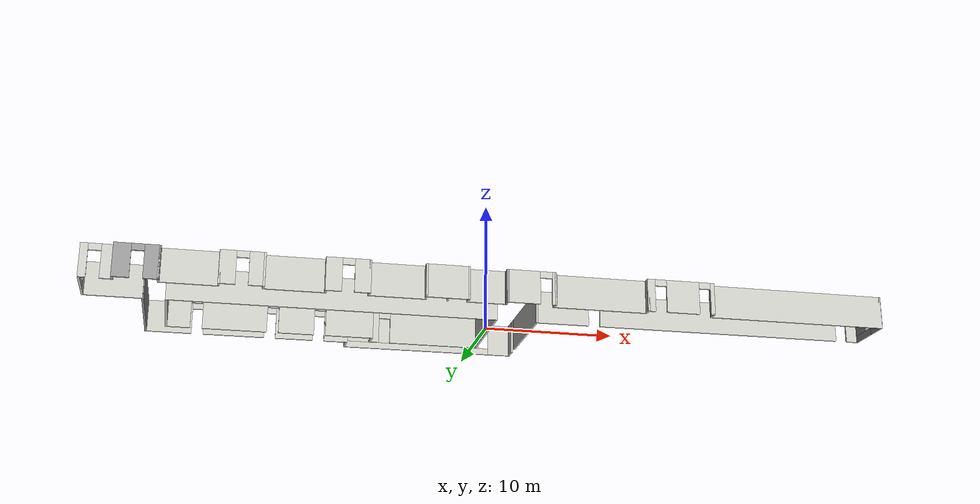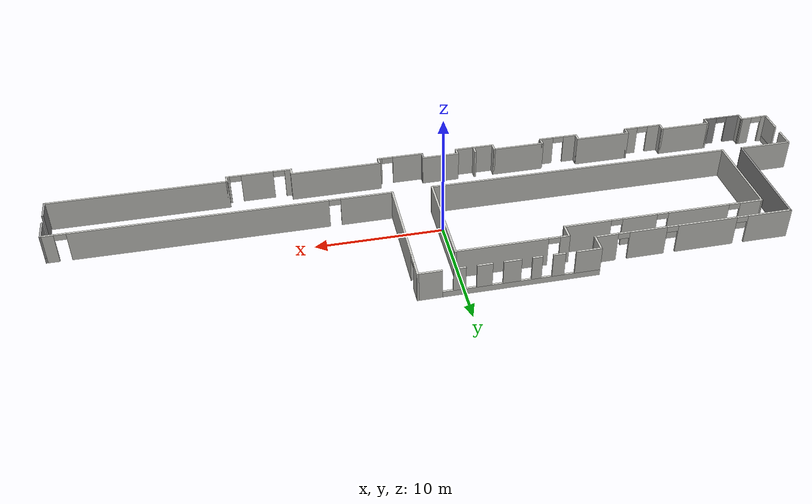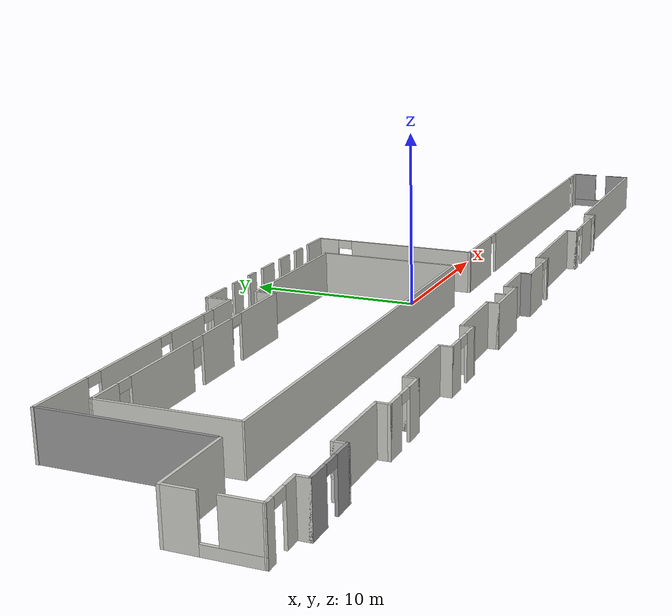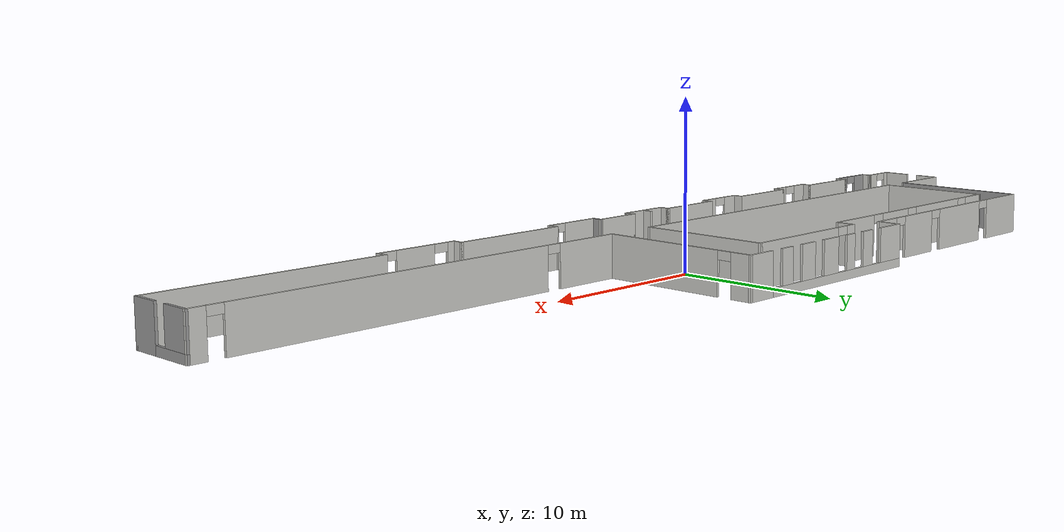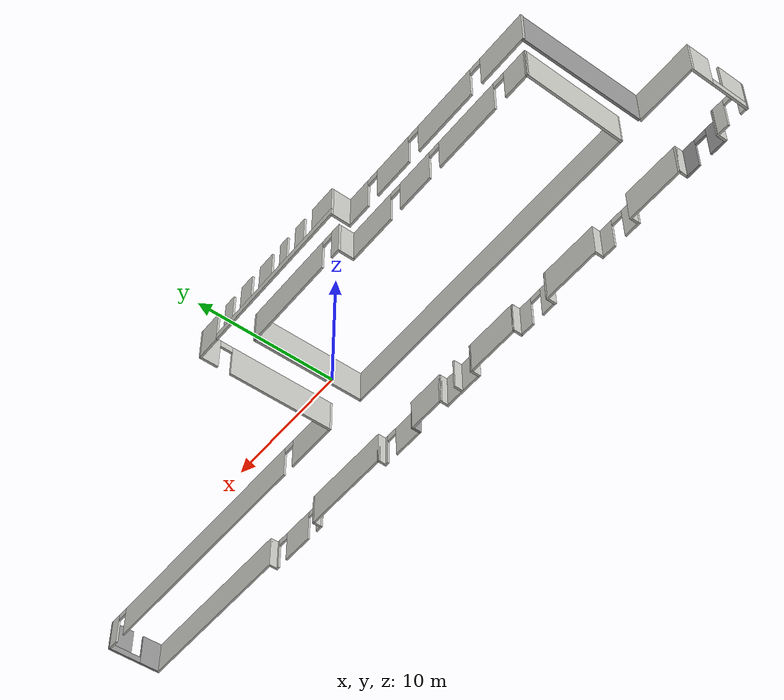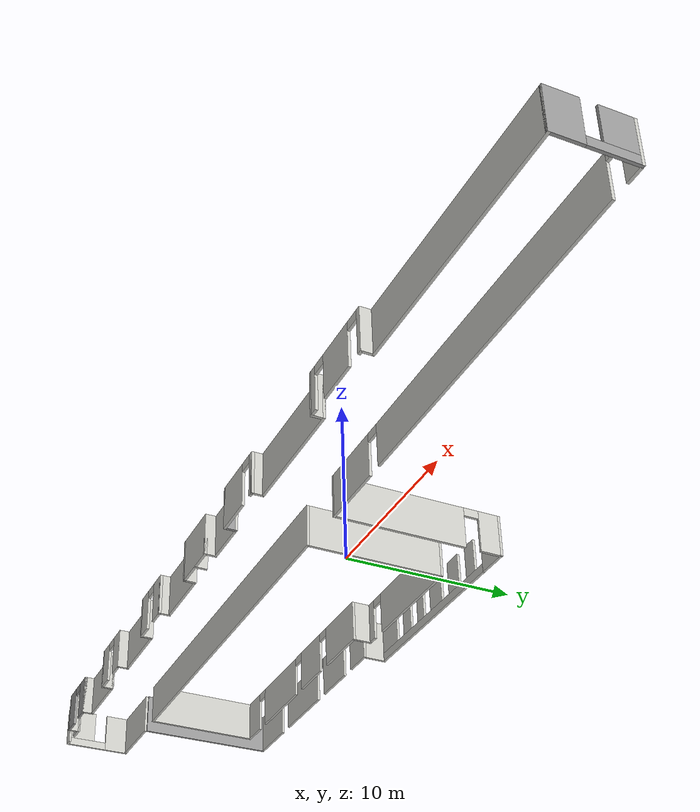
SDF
<?xml version='1.0'?>
<sdf version='1.6'>
  <model name='model3rdfloor1'>
    <pose frame=''>0.000428 0.217636 0 0 -0 0</pose>
    <link name='Wall_148'>
      <collision name='Wall_148_Collision'>
        <geometry>
          <box>
            <size>0.75 0.15 2.5</size>
          </box>
        </geometry>
        <pose frame=''>0 0 1.25 0 -0 0</pose>
      </collision>
      <visual name='Wall_148_Visual'>
        <pose frame=''>0 0 1.25 0 -0 0</pose>
        <geometry>
          <box>
            <size>0.75 0.15 2.5</size>
          </box>
        </geometry>
        <material>
          <script>
            <uri>file://media/materials/scripts/gazebo.material</uri>
            <name>Gazebo/CeilingTiled</name>
          </script>
          <ambient>1 1 1 1</ambient>
        </material>
      </visual>
      <pose frame=''>-4.13912 -6.96016 0 0 -0 1.5708</pose>
    </link>
    <link name='Wall_150'>
      <pose frame=''>-3.3016 7.275 0 0 -0 3.14159</pose>
      <visual name='Wall_150_Visual_0'>
        <pose frame=''>-5.94073 0 1.25 0 -0 0</pose>
        <geometry>
          <box>
            <size>1.86854 0.15 2.5</size>
          </box>
        </geometry>
        <material>
          <script>
            <uri>file://media/materials/scripts/gazebo.material</uri>
            <name>Gazebo/CeilingTiled</name>
          </script>
          <ambient>1 1 1 1</ambient>
        </material>
      </visual>
      <collision name='Wall_150_Collision_0'>
        <geometry>
          <box>
            <size>1.86854 0.15 2.5</size>
          </box>
        </geometry>
        <pose frame=''>-5.94073 0 1.25 0 -0 0</pose>
      </collision>
      <visual name='Wall_150_Visual_1'>
        <pose frame=''>0.934272 0 0.25 0 -0 0</pose>
        <geometry>
          <box>
            <size>11.8815 0.15 0.5</size>
          </box>
        </geometry>
        <material>
          <script>
            <uri>file://media/materials/scripts/gazebo.material</uri>
            <name>Gazebo/CeilingTiled</name>
          </script>
          <ambient>1 1 1 1</ambient>
        </material>
      </visual>
      <collision name='Wall_150_Collision_1'>
        <geometry>
          <box>
            <size>11.8815 0.15 0.5</size>
          </box>
        </geometry>
        <pose frame=''>0.934272 0 0.25 0 -0 0</pose>
      </collision>
      <visual name='Wall_150_Visual_2'>
        <pose frame=''>-3.74458 0 1.5 0 -0 0</pose>
        <geometry>
          <box>
            <size>0.923759 0.15 2</size>
          </box>
        </geometry>
        <material>
          <script>
            <uri>file://media/materials/scripts/gazebo.material</uri>
            <name>Gazebo/CeilingTiled</name>
          </script>
          <ambient>1 1 1 1</ambient>
        </material>
      </visual>
      <collision name='Wall_150_Collision_2'>
        <geometry>
          <box>
            <size>0.923759 0.15 2</size>
          </box>
        </geometry>
        <pose frame=''>-3.74458 0 1.5 0 -0 0</pose>
      </collision>
      <visual name='Wall_150_Visual_3'>
        <pose frame=''>-1.89769 0 1.5 0 -0 0</pose>
        <geometry>
          <box>
            <size>1.17001 0.15 2</size>
          </box>
        </geometry>
        <material>
          <script>
            <uri>file://media/materials/scripts/gazebo.material</uri>
            <name>Gazebo/CeilingTiled</name>
          </script>
          <ambient>1 1 1 1</ambient>
        </material>
      </visual>
      <collision name='Wall_150_Collision_3'>
        <geometry>
          <box>
            <size>1.17001 0.15 2</size>
          </box>
        </geometry>
        <pose frame=''>-1.89769 0 1.5 0 -0 0</pose>
      </collision>
      <visual name='Wall_150_Visual_4'>
        <pose frame=''>0.154347 0 1.5 0 -0 0</pose>
        <geometry>
          <box>
            <size>1.33407 0.15 2</size>
          </box>
        </geometry>
        <material>
          <script>
            <uri>file://media/materials/scripts/gazebo.material</uri>
            <name>Gazebo/CeilingTiled</name>
          </script>
          <ambient>1 1 1 1</ambient>
        </material>
      </visual>
      <collision name='Wall_150_Collision_4'>
        <geometry>
          <box>
            <size>1.33407 0.15 2</size>
          </box>
        </geometry>
        <pose frame=''>0.154347 0 1.5 0 -0 0</pose>
      </collision>
      <visual name='Wall_150_Visual_5'>
        <pose frame=''>2.00123 0 1.5 0 -0 0</pose>
        <geometry>
          <box>
            <size>0.759703 0.15 2</size>
          </box>
        </geometry>
        <material>
          <script>
            <uri>file://media/materials/scripts/gazebo.material</uri>
            <name>Gazebo/CeilingTiled</name>
          </script>
          <ambient>1 1 1 1</ambient>
        </material>
      </visual>
      <collision name='Wall_150_Collision_5'>
        <geometry>
          <box>
            <size>0.759703 0.15 2</size>
          </box>
        </geometry>
        <pose frame=''>2.00123 0 1.5 0 -0 0</pose>
      </collision>
      <visual name='Wall_150_Visual_6'>
        <pose frame=''>3.64296 0 1.5 0 -0 0</pose>
        <geometry>
          <box>
            <size>0.92376 0.15 2</size>
          </box>
        </geometry>
        <material>
          <script>
            <uri>file://media/materials/scripts/gazebo.material</uri>
            <name>Gazebo/CeilingTiled</name>
          </script>
          <ambient>1 1 1 1</ambient>
        </material>
      </visual>
      <collision name='Wall_150_Collision_6'>
        <geometry>
          <box>
            <size>0.92376 0.15 2</size>
          </box>
        </geometry>
        <pose frame=''>3.64296 0 1.5 0 -0 0</pose>
      </collision>
      <visual name='Wall_150_Visual_7'>
        <pose frame=''>5.88992 0 1.5 0 -0 0</pose>
        <geometry>
          <box>
            <size>1.97016 0.15 2</size>
          </box>
        </geometry>
        <material>
          <script>
            <uri>file://media/materials/scripts/gazebo.material</uri>
            <name>Gazebo/CeilingTiled</name>
          </script>
          <ambient>1 1 1 1</ambient>
        </material>
      </visual>
      <collision name='Wall_150_Collision_7'>
        <geometry>
          <box>
            <size>1.97016 0.15 2</size>
          </box>
        </geometry>
        <pose frame=''>5.88992 0 1.5 0 -0 0</pose>
      </collision>
    </link>
    <link name='Wall_151'>
      <collision name='Wall_151_Collision'>
        <geometry>
          <box>
            <size>1.5 0.15 2.5</size>
          </box>
        </geometry>
        <pose frame=''>0 0 1.25 0 -0 0</pose>
      </collision>
      <visual name='Wall_151_Visual'>
        <pose frame=''>0 0 1.25 0 -0 0</pose>
        <geometry>
          <box>
            <size>1.5 0.15 2.5</size>
          </box>
        </geometry>
        <material>
          <script>
            <uri>file://media/materials/scripts/gazebo.material</uri>
            <name>Gazebo/CeilingTiled</name>
          </script>
          <ambient>1 1 1 1</ambient>
        </material>
      </visual>
      <pose frame=''>-10.1016 6.6 0 0 0 -1.5708</pose>
    </link>
    <link name='Wall_152'>
      <pose frame=''>-17.9016 5.925 0 0 -0 3.14159</pose>
      <visual name='Wall_152_Visual_0'>
        <pose frame=''>-6.94105 0 1.25 0 -0 0</pose>
        <geometry>
          <box>
            <size>1.8679 0.15 2.5</size>
          </box>
        </geometry>
        <material>
          <script>
            <uri>file://media/materials/scripts/gazebo.material</uri>
            <name>Gazebo/CeilingTiled</name>
          </script>
          <ambient>1 1 1 1</ambient>
        </material>
      </visual>
      <collision name='Wall_152_Collision_0'>
        <geometry>
          <box>
            <size>1.8679 0.15 2.5</size>
          </box>
        </geometry>
        <pose frame=''>-6.94105 0 1.25 0 -0 0</pose>
      </collision>
      <visual name='Wall_152_Visual_1'>
        <pose frame=''>-3.63985 0 1.25 0 -0 0</pose>
        <geometry>
          <box>
            <size>2.93449 0.15 2.5</size>
          </box>
        </geometry>
        <material>
          <script>
            <uri>file://media/materials/scripts/gazebo.material</uri>
            <name>Gazebo/CeilingTiled</name>
          </script>
          <ambient>1 1 1 1</ambient>
        </material>
      </visual>
      <collision name='Wall_152_Collision_1'>
        <geometry>
          <box>
            <size>2.93449 0.15 2.5</size>
          </box>
        </geometry>
        <pose frame=''>-3.63985 0 1.25 0 -0 0</pose>
      </collision>
      <visual name='Wall_152_Visual_2'>
        <pose frame=''>1.0741 0 1.25 0 -0 0</pose>
        <geometry>
          <box>
            <size>4.69342 0.15 2.5</size>
          </box>
        </geometry>
        <material>
          <script>
            <uri>file://media/materials/scripts/gazebo.material</uri>
            <name>Gazebo/CeilingTiled</name>
          </script>
          <ambient>1 1 1 1</ambient>
        </material>
      </visual>
      <collision name='Wall_152_Collision_2'>
        <geometry>
          <box>
            <size>4.69342 0.15 2.5</size>
          </box>
        </geometry>
        <pose frame=''>1.0741 0 1.25 0 -0 0</pose>
      </collision>
      <visual name='Wall_152_Visual_3'>
        <pose frame=''>6.09791 0 1.25 0 -0 0</pose>
        <geometry>
          <box>
            <size>3.55419 0.15 2.5</size>
          </box>
        </geometry>
        <material>
          <script>
            <uri>file://media/materials/scripts/gazebo.material</uri>
            <name>Gazebo/CeilingTiled</name>
          </script>
          <ambient>1 1 1 1</ambient>
        </material>
      </visual>
      <collision name='Wall_152_Collision_3'>
        <geometry>
          <box>
            <size>3.55419 0.15 2.5</size>
          </box>
        </geometry>
        <pose frame=''>6.09791 0 1.25 0 -0 0</pose>
      </collision>
      <visual name='Wall_152_Visual_4'>
        <pose frame=''>-5.5571 0 2.25 0 -0 0</pose>
        <geometry>
          <box>
            <size>0.9 0.15 0.5</size>
          </box>
        </geometry>
        <material>
          <script>
            <uri>file://media/materials/scripts/gazebo.material</uri>
            <name>Gazebo/CeilingTiled</name>
          </script>
          <ambient>1 1 1 1</ambient>
        </material>
      </visual>
      <collision name='Wall_152_Collision_4'>
        <geometry>
          <box>
            <size>0.9 0.15 0.5</size>
          </box>
        </geometry>
        <pose frame=''>-5.5571 0 2.25 0 -0 0</pose>
      </collision>
      <visual name='Wall_152_Visual_5'>
        <pose frame=''>-1.72261 0 2.25 0 -0 0</pose>
        <geometry>
          <box>
            <size>0.9 0.15 0.5</size>
          </box>
        </geometry>
        <material>
          <script>
            <uri>file://media/materials/scripts/gazebo.material</uri>
            <name>Gazebo/CeilingTiled</name>
          </script>
          <ambient>1 1 1 1</ambient>
        </material>
      </visual>
      <collision name='Wall_152_Collision_5'>
        <geometry>
          <box>
            <size>0.9 0.15 0.5</size>
          </box>
        </geometry>
        <pose frame=''>-1.72261 0 2.25 0 -0 0</pose>
      </collision>
      <visual name='Wall_152_Visual_6'>
        <pose frame=''>3.87081 0 2.25 0 -0 0</pose>
        <geometry>
          <box>
            <size>0.9 0.15 0.5</size>
          </box>
        </geometry>
        <material>
          <script>
            <uri>file://media/materials/scripts/gazebo.material</uri>
            <name>Gazebo/CeilingTiled</name>
          </script>
          <ambient>1 1 1 1</ambient>
        </material>
      </visual>
      <collision name='Wall_152_Collision_6'>
        <geometry>
          <box>
            <size>0.9 0.15 0.5</size>
          </box>
        </geometry>
        <pose frame=''>3.87081 0 2.25 0 -0 0</pose>
      </collision>
    </link>
    <link name='Wall_155'>
      <collision name='Wall_155_Collision'>
        <geometry>
          <box>
            <size>4.25 0.15 2.5</size>
          </box>
        </geometry>
        <pose frame=''>0 0 1.25 0 -0 0</pose>
      </collision>
      <visual name='Wall_155_Visual'>
        <pose frame=''>0 0 1.25 0 -0 0</pose>
        <geometry>
          <box>
            <size>4.25 0.15 2.5</size>
          </box>
        </geometry>
        <material>
          <script>
            <uri>file://media/materials/scripts/gazebo.material</uri>
            <name>Gazebo/CeilingTiled</name>
          </script>
          <ambient>1 1 1 1</ambient>
        </material>
      </visual>
      <pose frame=''>-27.7967 -2.60998 0 0 -0 0</pose>
    </link>
    <link name='Wall_20'>
      <pose frame=''>-29.8467 -4.65998 0 0 0 -1.5708</pose>
      <visual name='Wall_20_Visual_0'>
        <pose frame=''>-1.33506 0 1.25 0 -0 0</pose>
        <geometry>
          <box>
            <size>1.57987 0.15 2.5</size>
          </box>
        </geometry>
        <material>
          <script>
            <uri>file://media/materials/scripts/gazebo.material</uri>
            <name>Gazebo/CeilingTiled</name>
          </script>
          <ambient>1 1 1 1</ambient>
        </material>
      </visual>
      <collision name='Wall_20_Collision_0'>
        <geometry>
          <box>
            <size>1.57987 0.15 2.5</size>
          </box>
        </geometry>
        <pose frame=''>-1.33506 0 1.25 0 -0 0</pose>
      </collision>
      <visual name='Wall_20_Visual_1'>
        <pose frame=''>0.789935 0 0.25 0 -0 0</pose>
        <geometry>
          <box>
            <size>2.67013 0.15 0.5</size>
          </box>
        </geometry>
        <material>
          <script>
            <uri>file://media/materials/scripts/gazebo.material</uri>
            <name>Gazebo/CeilingTiled</name>
          </script>
          <ambient>1 1 1 1</ambient>
        </material>
      </visual>
      <collision name='Wall_20_Collision_1'>
        <geometry>
          <box>
            <size>2.67013 0.15 0.5</size>
          </box>
        </geometry>
        <pose frame=''>0.789935 0 0.25 0 -0 0</pose>
      </collision>
      <visual name='Wall_20_Visual_2'>
        <pose frame=''>1.18993 0 1.5 0 -0 0</pose>
        <geometry>
          <box>
            <size>1.87013 0.15 2</size>
          </box>
        </geometry>
        <material>
          <script>
            <uri>file://media/materials/scripts/gazebo.material</uri>
            <name>Gazebo/CeilingTiled</name>
          </script>
          <ambient>1 1 1 1</ambient>
        </material>
      </visual>
      <collision name='Wall_20_Collision_2'>
        <geometry>
          <box>
            <size>1.87013 0.15 2</size>
          </box>
        </geometry>
        <pose frame=''>1.18993 0 1.5 0 -0 0</pose>
      </collision>
    </link>
    <link name='Wall_21'>
      <pose frame=''>-28.7241 -6.70124 0 0 -0 0.023367</pose>
      <visual name='Wall_21_Visual_0'>
        <pose frame=''>-0.921767 0 1.25 0 -0 0</pose>
        <geometry>
          <box>
            <size>0.552139 0.15 2.5</size>
          </box>
        </geometry>
        <material>
          <script>
            <uri>file://media/materials/scripts/gazebo.material</uri>
            <name>Gazebo/CeilingTiled</name>
          </script>
          <ambient>1 1 1 1</ambient>
        </material>
      </visual>
      <collision name='Wall_21_Collision_0'>
        <geometry>
          <box>
            <size>0.552139 0.15 2.5</size>
          </box>
        </geometry>
        <pose frame=''>-0.921767 0 1.25 0 -0 0</pose>
      </collision>
      <visual name='Wall_21_Visual_1'>
        <pose frame=''>0.726069 0 1.25 0 -0 0</pose>
        <geometry>
          <box>
            <size>0.943534 0.15 2.5</size>
          </box>
        </geometry>
        <material>
          <script>
            <uri>file://media/materials/scripts/gazebo.material</uri>
            <name>Gazebo/CeilingTiled</name>
          </script>
          <ambient>1 1 1 1</ambient>
        </material>
      </visual>
      <collision name='Wall_21_Collision_1'>
        <geometry>
          <box>
            <size>0.943534 0.15 2.5</size>
          </box>
        </geometry>
        <pose frame=''>0.726069 0 1.25 0 -0 0</pose>
      </collision>
      <visual name='Wall_21_Visual_2'>
        <pose frame=''>-0.195698 0 2.25 0 -0 0</pose>
        <geometry>
          <box>
            <size>0.9 0.15 0.5</size>
          </box>
        </geometry>
        <material>
          <script>
            <uri>file://media/materials/scripts/gazebo.material</uri>
            <name>Gazebo/CeilingTiled</name>
          </script>
          <ambient>1 1 1 1</ambient>
        </material>
      </visual>
      <collision name='Wall_21_Collision_2'>
        <geometry>
          <box>
            <size>0.9 0.15 0.5</size>
          </box>
        </geometry>
        <pose frame=''>-0.195698 0 2.25 0 -0 0</pose>
      </collision>
    </link>
    <link name='Wall_22'>
      <collision name='Wall_22_Collision'>
        <geometry>
          <box>
            <size>0.75 0.15 2.5</size>
          </box>
        </geometry>
        <pose frame=''>0 0 1.25 0 -0 0</pose>
      </collision>
      <visual name='Wall_22_Visual'>
        <pose frame=''>0 0 1.25 0 -0 0</pose>
        <geometry>
          <box>
            <size>0.75 0.15 2.5</size>
          </box>
        </geometry>
        <material>
          <script>
            <uri>file://media/materials/scripts/gazebo.material</uri>
            <name>Gazebo/CeilingTiled</name>
          </script>
          <ambient>1 1 1 1</ambient>
        </material>
      </visual>
      <pose frame=''>-27.6016 -6.975 0 0 0 -1.5708</pose>
    </link>
    <link name='Wall_25'>
      <pose frame=''>-26.0516 -7.275 0 0 -0 0</pose>
      <visual name='Wall_25_Visual_0'>
        <pose frame=''>-1.01047 0 1.25 0 -0 0</pose>
        <geometry>
          <box>
            <size>1.22906 0.15 2.5</size>
          </box>
        </geometry>
        <material>
          <script>
            <uri>file://media/materials/scripts/gazebo.material</uri>
            <name>Gazebo/Grey</name>
          </script>
          <ambient>1 1 1 1</ambient>
        </material>
      </visual>
      <collision name='Wall_25_Collision_0'>
        <geometry>
          <box>
            <size>1.22906 0.15 2.5</size>
          </box>
        </geometry>
        <pose frame=''>-1.01047 0 1.25 0 -0 0</pose>
      </collision>
      <visual name='Wall_25_Visual_1'>
        <pose frame=''>1.06453 0 1.25 0 -0 0</pose>
        <geometry>
          <box>
            <size>1.12094 0.15 2.5</size>
          </box>
        </geometry>
        <material>
          <script>
            <uri>file://media/materials/scripts/gazebo.material</uri>
            <name>Gazebo/Grey</name>
          </script>
          <ambient>1 1 1 1</ambient>
        </material>
      </visual>
      <collision name='Wall_25_Collision_1'>
        <geometry>
          <box>
            <size>1.12094 0.15 2.5</size>
          </box>
        </geometry>
        <pose frame=''>1.06453 0 1.25 0 -0 0</pose>
      </collision>
      <visual name='Wall_25_Visual_2'>
        <pose frame=''>0.05406 0 2.25 0 -0 0</pose>
        <geometry>
          <box>
            <size>0.9 0.15 0.5</size>
          </box>
        </geometry>
        <material>
          <script>
            <uri>file://media/materials/scripts/gazebo.material</uri>
            <name>Gazebo/Grey</name>
          </script>
          <ambient>1 1 1 1</ambient>
        </material>
      </visual>
      <collision name='Wall_25_Collision_2'>
        <geometry>
          <box>
            <size>0.9 0.15 0.5</size>
          </box>
        </geometry>
        <pose frame=''>0.05406 0 2.25 0 -0 0</pose>
      </collision>
    </link>
    <link name='Wall_26'>
      <collision name='Wall_26_Collision'>
        <geometry>
          <box>
            <size>0.75 0.15 2.5</size>
          </box>
        </geometry>
        <pose frame=''>0 0 1.25 0 -0 0</pose>
      </collision>
      <visual name='Wall_26_Visual'>
        <pose frame=''>0 0 1.25 0 -0 0</pose>
        <geometry>
          <box>
            <size>0.75 0.15 2.5</size>
          </box>
        </geometry>
        <material>
          <script>
            <uri>file://media/materials/scripts/gazebo.material</uri>
            <name>Gazebo/CeilingTiled</name>
          </script>
          <ambient>1 1 1 1</ambient>
        </material>
      </visual>
      <pose frame=''>-24.5016 -6.975 0 0 -0 1.5708</pose>
    </link>
    <link name='Wall_27'>
      <collision name='Wall_27_Collision'>
        <geometry>
          <box>
            <size>4.25 0.15 2.5</size>
          </box>
        </geometry>
        <pose frame=''>0 0 1.25 0 -0 0</pose>
      </collision>
      <visual name='Wall_27_Visual'>
        <pose frame=''>0 0 1.25 0 -0 0</pose>
        <geometry>
          <box>
            <size>4.25 0.15 2.5</size>
          </box>
        </geometry>
        <material>
          <script>
            <uri>file://media/materials/scripts/gazebo.material</uri>
            <name>Gazebo/CeilingTiled</name>
          </script>
          <ambient>1 1 1 1</ambient>
        </material>
      </visual>
      <pose frame=''>-22.4516 -6.675 0 0 -0 0</pose>
    </link>
    <link name='Wall_28'>
      <collision name='Wall_28_Collision'>
        <geometry>
          <box>
            <size>0.75 0.15 2.5</size>
          </box>
        </geometry>
        <pose frame=''>0 0 1.25 0 -0 0</pose>
      </collision>
      <visual name='Wall_28_Visual'>
        <pose frame=''>0 0 1.25 0 -0 0</pose>
        <geometry>
          <box>
            <size>0.75 0.15 2.5</size>
          </box>
        </geometry>
        <material>
          <script>
            <uri>file://media/materials/scripts/gazebo.material</uri>
            <name>Gazebo/CeilingTiled</name>
          </script>
          <ambient>1 1 1 1</ambient>
        </material>
      </visual>
      <pose frame=''>-20.4016 -6.975 0 0 0 -1.5708</pose>
    </link>
    <link name='Wall_29'>
      <pose frame=''>-18.8516 -7.275 0 0 -0 0</pose>
      <visual name='Wall_29_Visual_0'>
        <pose frame=''>-1.02523 0 1.25 0 -0 0</pose>
        <geometry>
          <box>
            <size>1.19955 0.15 2.5</size>
          </box>
        </geometry>
        <material>
          <script>
            <uri>file://media/materials/scripts/gazebo.material</uri>
            <name>Gazebo/CeilingTiled</name>
          </script>
          <ambient>1 1 1 1</ambient>
        </material>
      </visual>
      <collision name='Wall_29_Collision_0'>
        <geometry>
          <box>
            <size>1.19955 0.15 2.5</size>
          </box>
        </geometry>
        <pose frame=''>-1.02523 0 1.25 0 -0 0</pose>
      </collision>
      <visual name='Wall_29_Visual_1'>
        <pose frame=''>1.04977 0 1.25 0 -0 0</pose>
        <geometry>
          <box>
            <size>1.15045 0.15 2.5</size>
          </box>
        </geometry>
        <material>
          <script>
            <uri>file://media/materials/scripts/gazebo.material</uri>
            <name>Gazebo/CeilingTiled</name>
          </script>
          <ambient>1 1 1 1</ambient>
        </material>
      </visual>
      <collision name='Wall_29_Collision_1'>
        <geometry>
          <box>
            <size>1.15045 0.15 2.5</size>
          </box>
        </geometry>
        <pose frame=''>1.04977 0 1.25 0 -0 0</pose>
      </collision>
      <visual name='Wall_29_Visual_2'>
        <pose frame=''>0.024548 0 2.25 0 -0 0</pose>
        <geometry>
          <box>
            <size>0.9 0.15 0.5</size>
          </box>
        </geometry>
        <material>
          <script>
            <uri>file://media/materials/scripts/gazebo.material</uri>
            <name>Gazebo/CeilingTiled</name>
          </script>
          <ambient>1 1 1 1</ambient>
        </material>
      </visual>
      <collision name='Wall_29_Collision_2'>
        <geometry>
          <box>
            <size>0.9 0.15 0.5</size>
          </box>
        </geometry>
        <pose frame=''>0.024548 0 2.25 0 -0 0</pose>
      </collision>
    </link>
    <link name='Wall_30'>
      <collision name='Wall_30_Collision'>
        <geometry>
          <box>
            <size>0.75 0.15 2.5</size>
          </box>
        </geometry>
        <pose frame=''>0 0 1.25 0 -0 0</pose>
      </collision>
      <visual name='Wall_30_Visual'>
        <pose frame=''>0 0 1.25 0 -0 0</pose>
        <geometry>
          <box>
            <size>0.75 0.15 2.5</size>
          </box>
        </geometry>
        <material>
          <script>
            <uri>file://media/materials/scripts/gazebo.material</uri>
            <name>Gazebo/CeilingTiled</name>
          </script>
          <ambient>1 1 1 1</ambient>
        </material>
      </visual>
      <pose frame=''>-17.3016 -6.975 0 0 -0 1.5708</pose>
    </link>
    <link name='Wall_31'>
      <collision name='Wall_31_Collision'>
        <geometry>
          <box>
            <size>4.5 0.15 2.5</size>
          </box>
        </geometry>
        <pose frame=''>0 0 1.25 0 -0 0</pose>
      </collision>
      <visual name='Wall_31_Visual'>
        <pose frame=''>0 0 1.25 0 -0 0</pose>
        <geometry>
          <box>
            <size>4.5 0.15 2.5</size>
          </box>
        </geometry>
        <material>
          <script>
            <uri>file://media/materials/scripts/gazebo.material</uri>
            <name>Gazebo/CeilingTiled</name>
          </script>
          <ambient>1 1 1 1</ambient>
        </material>
      </visual>
      <pose frame=''>-15.1266 -6.675 0 0 -0 0</pose>
    </link>
    <link name='Wall_32'>
      <collision name='Wall_32_Collision'>
        <geometry>
          <box>
            <size>0.75 0.15 2.5</size>
          </box>
        </geometry>
        <pose frame=''>0 0 1.25 0 -0 0</pose>
      </collision>
      <visual name='Wall_32_Visual'>
        <pose frame=''>0 0 1.25 0 -0 0</pose>
        <geometry>
          <box>
            <size>0.75 0.15 2.5</size>
          </box>
        </geometry>
        <material>
          <script>
            <uri>file://media/materials/scripts/gazebo.material</uri>
            <name>Gazebo/CeilingTiled</name>
          </script>
          <ambient>1 1 1 1</ambient>
        </material>
      </visual>
      <pose frame=''>-12.9516 -6.975 0 0 0 -1.5708</pose>
    </link>
    <link name='Wall_33'>
      <pose frame=''>-11.4016 -7.275 0 0 -0 0</pose>
      <visual name='Wall_33_Visual_0'>
        <pose frame=''>-1.03776 0 1.25 0 -0 0</pose>
        <geometry>
          <box>
            <size>1.17447 0.15 2.5</size>
          </box>
        </geometry>
        <material>
          <script>
            <uri>file://media/materials/scripts/gazebo.material</uri>
            <name>Gazebo/CeilingTiled</name>
          </script>
          <ambient>1 1 1 1</ambient>
        </material>
      </visual>
      <collision name='Wall_33_Collision_0'>
        <geometry>
          <box>
            <size>1.17447 0.15 2.5</size>
          </box>
        </geometry>
        <pose frame=''>-1.03776 0 1.25 0 -0 0</pose>
      </collision>
      <visual name='Wall_33_Visual_1'>
        <pose frame=''>1.03724 0 1.25 0 -0 0</pose>
        <geometry>
          <box>
            <size>1.17553 0.15 2.5</size>
          </box>
        </geometry>
        <material>
          <script>
            <uri>file://media/materials/scripts/gazebo.material</uri>
            <name>Gazebo/CeilingTiled</name>
          </script>
          <ambient>1 1 1 1</ambient>
        </material>
      </visual>
      <collision name='Wall_33_Collision_1'>
        <geometry>
          <box>
            <size>1.17553 0.15 2.5</size>
          </box>
        </geometry>
        <pose frame=''>1.03724 0 1.25 0 -0 0</pose>
      </collision>
      <visual name='Wall_33_Visual_2'>
        <pose frame=''>-0.000526 0 2.25 0 -0 0</pose>
        <geometry>
          <box>
            <size>0.9 0.15 0.5</size>
          </box>
        </geometry>
        <material>
          <script>
            <uri>file://media/materials/scripts/gazebo.material</uri>
            <name>Gazebo/CeilingTiled</name>
          </script>
          <ambient>1 1 1 1</ambient>
        </material>
      </visual>
      <collision name='Wall_33_Collision_2'>
        <geometry>
          <box>
            <size>0.9 0.15 0.5</size>
          </box>
        </geometry>
        <pose frame=''>-0.000526 0 2.25 0 -0 0</pose>
      </collision>
    </link>
    <link name='Wall_34'>
      <collision name='Wall_34_Collision'>
        <geometry>
          <box>
            <size>0.75 0.15 2.5</size>
          </box>
        </geometry>
        <pose frame=''>0 0 1.25 0 -0 0</pose>
      </collision>
      <visual name='Wall_34_Visual'>
        <pose frame=''>0 0 1.25 0 -0 0</pose>
        <geometry>
          <box>
            <size>0.75 0.15 2.5</size>
          </box>
        </geometry>
        <material>
          <script>
            <uri>file://media/materials/scripts/gazebo.material</uri>
            <name>Gazebo/CeilingTiled</name>
          </script>
          <ambient>1 1 1 1</ambient>
        </material>
      </visual>
      <pose frame=''>-9.8516 -6.975 0 0 -0 1.5708</pose>
    </link>
    <link name='Wall_35'>
      <collision name='Wall_35_Collision'>
        <geometry>
          <box>
            <size>4.25 0.15 2.5</size>
          </box>
        </geometry>
        <pose frame=''>0 0 1.25 0 -0 0</pose>
      </collision>
      <visual name='Wall_35_Visual'>
        <pose frame=''>0 0 1.25 0 -0 0</pose>
        <geometry>
          <box>
            <size>4.25 0.15 2.5</size>
          </box>
        </geometry>
        <material>
          <script>
            <uri>file://media/materials/scripts/gazebo.material</uri>
            <name>Gazebo/CeilingTiled</name>
          </script>
          <ambient>1 1 1 1</ambient>
        </material>
      </visual>
      <pose frame=''>-7.8016 -6.675 0 0 -0 0</pose>
    </link>
    <link name='Wall_36'>
      <collision name='Wall_36_Collision'>
        <geometry>
          <box>
            <size>0.75 0.15 2.5</size>
          </box>
        </geometry>
        <pose frame=''>0 0 1.25 0 -0 0</pose>
      </collision>
      <visual name='Wall_36_Visual'>
        <pose frame=''>0 0 1.25 0 -0 0</pose>
        <geometry>
          <box>
            <size>0.75 0.15 2.5</size>
          </box>
        </geometry>
        <material>
          <script>
            <uri>file://media/materials/scripts/gazebo.material</uri>
            <name>Gazebo/CeilingTiled</name>
          </script>
          <ambient>1 1 1 1</ambient>
        </material>
      </visual>
      <pose frame=''>-5.7516 -6.975 0 0 0 -1.5708</pose>
    </link>
    <link name='Wall_37'>
      <collision name='Wall_37_Collision'>
        <geometry>
          <box>
            <size>3.25 0.15 2.5</size>
          </box>
        </geometry>
        <pose frame=''>0 0 1.25 0 -0 0</pose>
      </collision>
      <visual name='Wall_37_Visual'>
        <pose frame=''>0 0 1.25 0 -0 0</pose>
        <geometry>
          <box>
            <size>3.25 0.15 2.5</size>
          </box>
        </geometry>
        <material>
          <script>
            <uri>file://media/materials/scripts/gazebo.material</uri>
            <name>Gazebo/CeilingTiled</name>
          </script>
          <ambient>1 1 1 1</ambient>
        </material>
      </visual>
      <pose frame=''>-4.2016 -7.275 0 0 -0 0</pose>
    </link>
    <link name='Wall_38'>
      <collision name='Wall_38_Collision'>
        <geometry>
          <box>
            <size>0.75 0.15 2.5</size>
          </box>
        </geometry>
        <pose frame=''>0 0 1.25 0 -0 0</pose>
      </collision>
      <visual name='Wall_38_Visual'>
        <pose frame=''>0 0 1.25 0 -0 0</pose>
        <geometry>
          <box>
            <size>0.75 0.15 2.5</size>
          </box>
        </geometry>
        <material>
          <script>
            <uri>file://media/materials/scripts/gazebo.material</uri>
            <name>Gazebo/CeilingTiled</name>
          </script>
          <ambient>1 1 1 1</ambient>
        </material>
      </visual>
      <pose frame=''>-2.6516 -6.975 0 0 -0 1.5708</pose>
    </link>
    <link name='Wall_39'>
      <collision name='Wall_39_Collision'>
        <geometry>
          <box>
            <size>3 0.15 2.5</size>
          </box>
        </geometry>
        <pose frame=''>0 0 1.25 0 -0 0</pose>
      </collision>
      <visual name='Wall_39_Visual'>
        <pose frame=''>0 0 1.25 0 -0 0</pose>
        <geometry>
          <box>
            <size>3 0.15 2.5</size>
          </box>
        </geometry>
        <material>
          <script>
            <uri>file://media/materials/scripts/gazebo.material</uri>
            <name>Gazebo/CeilingTiled</name>
          </script>
          <ambient>1 1 1 1</ambient>
        </material>
      </visual>
      <pose frame=''>-1.2266 -6.675 0 0 -0 0</pose>
    </link>
    <link name='Wall_40'>
      <collision name='Wall_40_Collision'>
        <geometry>
          <box>
            <size>0.75 0.15 2.5</size>
          </box>
        </geometry>
        <pose frame=''>0 0 1.25 0 -0 0</pose>
      </collision>
      <visual name='Wall_40_Visual'>
        <pose frame=''>0 0 1.25 0 -0 0</pose>
        <geometry>
          <box>
            <size>0.75 0.15 2.5</size>
          </box>
        </geometry>
        <material>
          <script>
            <uri>file://media/materials/scripts/gazebo.material</uri>
            <name>Gazebo/Grey</name>
          </script>
          <ambient>1 1 1 1</ambient>
        </material>
      </visual>
      <pose frame=''>0.198396 -6.975 0 0 0 -1.5708</pose>
    </link>
    <link name='Wall_41'>
      <pose frame=''>1.9984 -7.275 0 0 -0 0</pose>
      <visual name='Wall_41_Visual_0'>
        <pose frame=''>-0.622883 0 1.25 0 -0 0</pose>
        <geometry>
          <box>
            <size>2.50423 0.15 2.5</size>
          </box>
        </geometry>
        <material>
          <script>
            <uri>file://media/materials/scripts/gazebo.material</uri>
            <name>Gazebo/CeilingTiled</name>
          </script>
          <ambient>1 1 1 1</ambient>
        </material>
      </visual>
      <collision name='Wall_41_Collision_0'>
        <geometry>
          <box>
            <size>2.50423 0.15 2.5</size>
          </box>
        </geometry>
        <pose frame=''>-0.622883 0 1.25 0 -0 0</pose>
      </collision>
      <visual name='Wall_41_Visual_1'>
        <pose frame=''>1.70212 0 1.25 0 -0 0</pose>
        <geometry>
          <box>
            <size>0.345767 0.15 2.5</size>
          </box>
        </geometry>
        <material>
          <script>
            <uri>file://media/materials/scripts/gazebo.material</uri>
            <name>Gazebo/CeilingTiled</name>
          </script>
          <ambient>1 1 1 1</ambient>
        </material>
      </visual>
      <collision name='Wall_41_Collision_1'>
        <geometry>
          <box>
            <size>0.345767 0.15 2.5</size>
          </box>
        </geometry>
        <pose frame=''>1.70212 0 1.25 0 -0 0</pose>
      </collision>
      <visual name='Wall_41_Visual_2'>
        <pose frame=''>1.07923 0 2.25 0 -0 0</pose>
        <geometry>
          <box>
            <size>0.9 0.15 0.5</size>
          </box>
        </geometry>
        <material>
          <script>
            <uri>file://media/materials/scripts/gazebo.material</uri>
            <name>Gazebo/CeilingTiled</name>
          </script>
          <ambient>1 1 1 1</ambient>
        </material>
      </visual>
      <collision name='Wall_41_Collision_2'>
        <geometry>
          <box>
            <size>0.9 0.15 0.5</size>
          </box>
        </geometry>
        <pose frame=''>1.07923 0 2.25 0 -0 0</pose>
      </collision>
    </link>
    <link name='Wall_42'>
      <collision name='Wall_42_Collision'>
        <geometry>
          <box>
            <size>0.75 0.15 2.5</size>
          </box>
        </geometry>
        <pose frame=''>0 0 1.25 0 -0 0</pose>
      </collision>
      <visual name='Wall_42_Visual'>
        <pose frame=''>0 0 1.25 0 -0 0</pose>
        <geometry>
          <box>
            <size>0.75 0.15 2.5</size>
          </box>
        </geometry>
        <material>
          <script>
            <uri>file://media/materials/scripts/gazebo.material</uri>
            <name>Gazebo/CeilingTiled</name>
          </script>
          <ambient>1 1 1 1</ambient>
        </material>
      </visual>
      <pose frame=''>3.7984 -6.975 0 0 -0 1.5708</pose>
    </link>
    <link name='Wall_43'>
      <collision name='Wall_43_Collision'>
        <geometry>
          <box>
            <size>7.25 0.15 2.5</size>
          </box>
        </geometry>
        <pose frame=''>0 0 1.25 0 -0 0</pose>
      </collision>
      <visual name='Wall_43_Visual'>
        <pose frame=''>0 0 1.25 0 -0 0</pose>
        <geometry>
          <box>
            <size>7.25 0.15 2.5</size>
          </box>
        </geometry>
        <material>
          <script>
            <uri>file://media/materials/scripts/gazebo.material</uri>
            <name>Gazebo/CeilingTiled</name>
          </script>
          <ambient>1 1 1 1</ambient>
        </material>
      </visual>
      <pose frame=''>7.3484 -6.675 0 0 -0 0</pose>
    </link>
    <link name='Wall_44'>
      <collision name='Wall_44_Collision'>
        <geometry>
          <box>
            <size>0.75 0.15 2.5</size>
          </box>
        </geometry>
        <pose frame=''>0 0 1.25 0 -0 0</pose>
      </collision>
      <visual name='Wall_44_Visual'>
        <pose frame=''>0 0 1.25 0 -0 0</pose>
        <geometry>
          <box>
            <size>0.75 0.15 2.5</size>
          </box>
        </geometry>
        <material>
          <script>
            <uri>file://media/materials/scripts/gazebo.material</uri>
            <name>Gazebo/CeilingTiled</name>
          </script>
          <ambient>1 1 1 1</ambient>
        </material>
      </visual>
      <pose frame=''>10.8984 -6.975 0 0 0 -1.5708</pose>
    </link>
    <link name='Wall_45'>
      <pose frame=''>13.4484 -7.275 0 0 -0 0</pose>
      <visual name='Wall_45_Visual_0'>
        <pose frame=''>-2.32807 0 1.25 0 -0 0</pose>
        <geometry>
          <box>
            <size>0.593864 0.15 2.5</size>
          </box>
        </geometry>
        <material>
          <script>
            <uri>file://media/materials/scripts/gazebo.material</uri>
            <name>Gazebo/CeilingTiled</name>
          </script>
          <ambient>1 1 1 1</ambient>
        </material>
      </visual>
      <collision name='Wall_45_Collision_0'>
        <geometry>
          <box>
            <size>0.593864 0.15 2.5</size>
          </box>
        </geometry>
        <pose frame=''>-2.32807 0 1.25 0 -0 0</pose>
      </collision>
      <visual name='Wall_45_Visual_1'>
        <pose frame=''>0.142095 0 1.25 0 -0 0</pose>
        <geometry>
          <box>
            <size>2.54646 0.15 2.5</size>
          </box>
        </geometry>
        <material>
          <script>
            <uri>file://media/materials/scripts/gazebo.material</uri>
            <name>Gazebo/CeilingTiled</name>
          </script>
          <ambient>1 1 1 1</ambient>
        </material>
      </visual>
      <collision name='Wall_45_Collision_1'>
        <geometry>
          <box>
            <size>2.54646 0.15 2.5</size>
          </box>
        </geometry>
        <pose frame=''>0.142095 0 1.25 0 -0 0</pose>
      </collision>
      <visual name='Wall_45_Visual_2'>
        <pose frame=''>2.47016 0 1.25 0 -0 0</pose>
        <geometry>
          <box>
            <size>0.309675 0.15 2.5</size>
          </box>
        </geometry>
        <material>
          <script>
            <uri>file://media/materials/scripts/gazebo.material</uri>
            <name>Gazebo/CeilingTiled</name>
          </script>
          <ambient>1 1 1 1</ambient>
        </material>
      </visual>
      <collision name='Wall_45_Collision_2'>
        <geometry>
          <box>
            <size>0.309675 0.15 2.5</size>
          </box>
        </geometry>
        <pose frame=''>2.47016 0 1.25 0 -0 0</pose>
      </collision>
      <visual name='Wall_45_Visual_3'>
        <pose frame=''>-1.58114 0 2.25 0 -0 0</pose>
        <geometry>
          <box>
            <size>0.9 0.15 0.5</size>
          </box>
        </geometry>
        <material>
          <script>
            <uri>file://media/materials/scripts/gazebo.material</uri>
            <name>Gazebo/CeilingTiled</name>
          </script>
          <ambient>1 1 1 1</ambient>
        </material>
      </visual>
      <collision name='Wall_45_Collision_3'>
        <geometry>
          <box>
            <size>0.9 0.15 0.5</size>
          </box>
        </geometry>
        <pose frame=''>-1.58114 0 2.25 0 -0 0</pose>
      </collision>
      <visual name='Wall_45_Visual_4'>
        <pose frame=''>1.86532 0 2.25 0 -0 0</pose>
        <geometry>
          <box>
            <size>0.9 0.15 0.5</size>
          </box>
        </geometry>
        <material>
          <script>
            <uri>file://media/materials/scripts/gazebo.material</uri>
            <name>Gazebo/CeilingTiled</name>
          </script>
          <ambient>1 1 1 1</ambient>
        </material>
      </visual>
      <collision name='Wall_45_Collision_4'>
        <geometry>
          <box>
            <size>0.9 0.15 0.5</size>
          </box>
        </geometry>
        <pose frame=''>1.86532 0 2.25 0 -0 0</pose>
      </collision>
    </link>
    <link name='Wall_46'>
      <collision name='Wall_46_Collision'>
        <geometry>
          <box>
            <size>0.75 0.15 2.5</size>
          </box>
        </geometry>
        <pose frame=''>0 0 1.25 0 -0 0</pose>
      </collision>
      <visual name='Wall_46_Visual'>
        <pose frame=''>0 0 1.25 0 -0 0</pose>
        <geometry>
          <box>
            <size>0.75 0.15 2.5</size>
          </box>
        </geometry>
        <material>
          <script>
            <uri>file://media/materials/scripts/gazebo.material</uri>
            <name>Gazebo/CeilingTiled</name>
          </script>
          <ambient>1 1 1 1</ambient>
        </material>
      </visual>
      <pose frame=''>15.9984 -6.975 0 0 -0 1.5708</pose>
    </link>
    <link name='Wall_47'>
      <collision name='Wall_47_Collision'>
        <geometry>
          <box>
            <size>14 0.15 2.5</size>
          </box>
        </geometry>
        <pose frame=''>0 0 1.25 0 -0 0</pose>
      </collision>
      <visual name='Wall_47_Visual'>
        <pose frame=''>0 0 1.25 0 -0 0</pose>
        <geometry>
          <box>
            <size>14 0.15 2.5</size>
          </box>
        </geometry>
        <material>
          <script>
            <uri>file://media/materials/scripts/gazebo.material</uri>
            <name>Gazebo/CeilingTiled</name>
          </script>
          <ambient>1 1 1 1</ambient>
        </material>
      </visual>
      <pose frame=''>22.9234 -6.675 0 0 -0 0</pose>
    </link>
    <link name='Wall_52'>
      <pose frame=''>29.8484 -4.625 0 0 -0 1.5708</pose>
      <visual name='Wall_52_Visual_0'>
        <pose frame=''>-1.28477 0 1.25 0 -0 0</pose>
        <geometry>
          <box>
            <size>1.68046 0.15 2.5</size>
          </box>
        </geometry>
        <material>
          <script>
            <uri>file://media/materials/scripts/gazebo.material</uri>
            <name>Gazebo/Grey</name>
          </script>
          <ambient>1 1 1 1</ambient>
        </material>
      </visual>
      <collision name='Wall_52_Collision_0'>
        <geometry>
          <box>
            <size>1.68046 0.15 2.5</size>
          </box>
        </geometry>
        <pose frame=''>-1.28477 0 1.25 0 -0 0</pose>
      </collision>
      <visual name='Wall_52_Visual_1'>
        <pose frame=''>0.840232 0 0.25 0 -0 0</pose>
        <geometry>
          <box>
            <size>2.56954 0.15 0.5</size>
          </box>
        </geometry>
        <material>
          <script>
            <uri>file://media/materials/scripts/gazebo.material</uri>
            <name>Gazebo/Grey</name>
          </script>
          <ambient>1 1 1 1</ambient>
        </material>
      </visual>
      <collision name='Wall_52_Collision_1'>
        <geometry>
          <box>
            <size>2.56954 0.15 0.5</size>
          </box>
        </geometry>
        <pose frame=''>0.840232 0 0.25 0 -0 0</pose>
      </collision>
      <visual name='Wall_52_Visual_2'>
        <pose frame=''>1.24023 0 1.5 0 -0 0</pose>
        <geometry>
          <box>
            <size>1.76954 0.15 2</size>
          </box>
        </geometry>
        <material>
          <script>
            <uri>file://media/materials/scripts/gazebo.material</uri>
            <name>Gazebo/Grey</name>
          </script>
          <ambient>1 1 1 1</ambient>
        </material>
      </visual>
      <collision name='Wall_52_Collision_2'>
        <geometry>
          <box>
            <size>1.76954 0.15 2</size>
          </box>
        </geometry>
        <pose frame=''>1.24023 0 1.5 0 -0 0</pose>
      </collision>
    </link>
    <link name='Wall_53'>
      <pose frame=''>16.6734 -2.575 0 0 -0 3.14159</pose>
      <visual name='Wall_53_Visual_0'>
        <pose frame=''>-12.7393 0 1.25 0 -0 0</pose>
        <geometry>
          <box>
            <size>1.02149 0.15 2.5</size>
          </box>
        </geometry>
        <material>
          <script>
            <uri>file://media/materials/scripts/gazebo.material</uri>
            <name>Gazebo/CeilingTiled</name>
          </script>
          <ambient>1 1 1 1</ambient>
        </material>
      </visual>
      <collision name='Wall_53_Collision_0'>
        <geometry>
          <box>
            <size>1.02149 0.15 2.5</size>
          </box>
        </geometry>
        <pose frame=''>-12.7393 0 1.25 0 -0 0</pose>
      </collision>
      <visual name='Wall_53_Visual_1'>
        <pose frame=''>-1.56455 0 1.25 0 -0 0</pose>
        <geometry>
          <box>
            <size>19.5279 0.15 2.5</size>
          </box>
        </geometry>
        <material>
          <script>
            <uri>file://media/materials/scripts/gazebo.material</uri>
            <name>Gazebo/CeilingTiled</name>
          </script>
          <ambient>1 1 1 1</ambient>
        </material>
      </visual>
      <collision name='Wall_53_Collision_1'>
        <geometry>
          <box>
            <size>19.5279 0.15 2.5</size>
          </box>
        </geometry>
        <pose frame=''>-1.56455 0 1.25 0 -0 0</pose>
      </collision>
      <visual name='Wall_53_Visual_2'>
        <pose frame=''>11.1747 0 1.25 0 -0 0</pose>
        <geometry>
          <box>
            <size>4.1506 0.15 2.5</size>
          </box>
        </geometry>
        <material>
          <script>
            <uri>file://media/materials/scripts/gazebo.material</uri>
            <name>Gazebo/CeilingTiled</name>
          </script>
          <ambient>1 1 1 1</ambient>
        </material>
      </visual>
      <collision name='Wall_53_Collision_2'>
        <geometry>
          <box>
            <size>4.1506 0.15 2.5</size>
          </box>
        </geometry>
        <pose frame=''>11.1747 0 1.25 0 -0 0</pose>
      </collision>
      <visual name='Wall_53_Visual_3'>
        <pose frame=''>-11.7785 0 2.25 0 -0 0</pose>
        <geometry>
          <box>
            <size>0.9 0.15 0.5</size>
          </box>
        </geometry>
        <material>
          <script>
            <uri>file://media/materials/scripts/gazebo.material</uri>
            <name>Gazebo/CeilingTiled</name>
          </script>
          <ambient>1 1 1 1</ambient>
        </material>
      </visual>
      <collision name='Wall_53_Collision_3'>
        <geometry>
          <box>
            <size>0.9 0.15 0.5</size>
          </box>
        </geometry>
        <pose frame=''>-11.7785 0 2.25 0 -0 0</pose>
      </collision>
      <visual name='Wall_53_Visual_4'>
        <pose frame=''>8.6494 0 2.25 0 -0 0</pose>
        <geometry>
          <box>
            <size>0.9 0.15 0.5</size>
          </box>
        </geometry>
        <material>
          <script>
            <uri>file://media/materials/scripts/gazebo.material</uri>
            <name>Gazebo/CeilingTiled</name>
          </script>
          <ambient>1 1 1 1</ambient>
        </material>
      </visual>
      <collision name='Wall_53_Collision_4'>
        <geometry>
          <box>
            <size>0.9 0.15 0.5</size>
          </box>
        </geometry>
        <pose frame=''>8.6494 0 2.25 0 -0 0</pose>
      </collision>
    </link>
    <link name='Wall_54'>
      <pose frame=''>3.4984 2.35 0 0 -0 1.5708</pose>
      <visual name='Wall_54_Visual_0'>
        <pose frame=''>-1.12344 0 1.25 0 -0 0</pose>
        <geometry>
          <box>
            <size>7.75311 0.15 2.5</size>
          </box>
        </geometry>
        <material>
          <script>
            <uri>file://media/materials/scripts/gazebo.material</uri>
            <name>Gazebo/CeilingTiled</name>
          </script>
          <ambient>1 1 1 1</ambient>
        </material>
      </visual>
      <collision name='Wall_54_Collision_0'>
        <geometry>
          <box>
            <size>7.75311 0.15 2.5</size>
          </box>
        </geometry>
        <pose frame=''>-1.12344 0 1.25 0 -0 0</pose>
      </collision>
      <visual name='Wall_54_Visual_1'>
        <pose frame=''>4.32656 0 1.25 0 -0 0</pose>
        <geometry>
          <box>
            <size>1.34689 0.15 2.5</size>
          </box>
        </geometry>
        <material>
          <script>
            <uri>file://media/materials/scripts/gazebo.material</uri>
            <name>Gazebo/CeilingTiled</name>
          </script>
          <ambient>1 1 1 1</ambient>
        </material>
      </visual>
      <collision name='Wall_54_Collision_1'>
        <geometry>
          <box>
            <size>1.34689 0.15 2.5</size>
          </box>
        </geometry>
        <pose frame=''>4.32656 0 1.25 0 -0 0</pose>
      </collision>
      <visual name='Wall_54_Visual_2'>
        <pose frame=''>3.20311 0 2.25 0 -0 0</pose>
        <geometry>
          <box>
            <size>0.9 0.15 0.5</size>
          </box>
        </geometry>
        <material>
          <script>
            <uri>file://media/materials/scripts/gazebo.material</uri>
            <name>Gazebo/CeilingTiled</name>
          </script>
          <ambient>1 1 1 1</ambient>
        </material>
      </visual>
      <collision name='Wall_54_Collision_2'>
        <geometry>
          <box>
            <size>0.9 0.15 0.5</size>
          </box>
        </geometry>
        <pose frame=''>3.20311 0 2.25 0 -0 0</pose>
      </collision>
    </link>
    <link name='Wall_56'>
      <collision name='Wall_56_Collision'>
        <geometry>
          <box>
            <size>8.5 0.15 2.5</size>
          </box>
        </geometry>
        <pose frame=''>0 0 1.25 0 -0 0</pose>
      </collision>
      <visual name='Wall_56_Visual'>
        <pose frame=''>0 0 1.25 0 -0 0</pose>
        <geometry>
          <box>
            <size>8.5 0.15 2.5</size>
          </box>
        </geometry>
        <material>
          <script>
            <uri>file://media/materials/scripts/gazebo.material</uri>
            <name>Gazebo/Grey</name>
          </script>
          <ambient>1 1 1 1</ambient>
        </material>
      </visual>
      <pose frame=''>-25.6716 1.72757 0 0 0 -1.5708</pose>
    </link>
    <link name='Wall_59'>
      <collision name='Wall_59_Collision'>
        <geometry>
          <box>
            <size>7.08413 0.15 2.5</size>
          </box>
        </geometry>
        <pose frame=''>0 0 1.25 0 -0 0</pose>
      </collision>
      <visual name='Wall_59_Visual'>
        <pose frame=''>0 0 1.25 0 -0 0</pose>
        <geometry>
          <box>
            <size>7.08413 0.15 2.5</size>
          </box>
        </geometry>
        <material>
          <script>
            <uri>file://media/materials/scripts/gazebo.material</uri>
            <name>Gazebo/CeilingTiled</name>
          </script>
          <ambient>1 1 1 1</ambient>
        </material>
      </visual>
      <pose frame=''>-24.0624 0.839735 0 0 0 -1.55637</pose>
    </link>
    <link name='Wall_60'>
      <collision name='Wall_60_Collision'>
        <geometry>
          <box>
            <size>24.5 0.15 2.5</size>
          </box>
        </geometry>
        <pose frame=''>0 0 1.25 0 -0 0</pose>
      </collision>
      <visual name='Wall_60_Visual'>
        <pose frame=''>0 0 1.25 0 -0 0</pose>
        <geometry>
          <box>
            <size>24.5 0.15 2.5</size>
          </box>
        </geometry>
        <material>
          <script>
            <uri>file://media/materials/scripts/gazebo.material</uri>
            <name>Gazebo/CeilingTiled</name>
          </script>
          <ambient>1 1 1 1</ambient>
        </material>
      </visual>
      <pose frame=''>-11.8374 -2.64173 0 0 -0 0</pose>
    </link>
    <link name='Wall_61'>
      <collision name='Wall_61_Collision'>
        <geometry>
          <box>
            <size>8.19771 0.15 2.5</size>
          </box>
        </geometry>
        <pose frame=''>0 0 1.25 0 -0 0</pose>
      </collision>
      <visual name='Wall_61_Visual'>
        <pose frame=''>0 0 1.25 0 -0 0</pose>
        <geometry>
          <box>
            <size>8.19771 0.15 2.5</size>
          </box>
        </geometry>
        <material>
          <script>
            <uri>file://media/materials/scripts/gazebo.material</uri>
            <name>Gazebo/CeilingTiled</name>
          </script>
          <ambient>1 1 1 1</ambient>
        </material>
      </visual>
      <pose frame=''>0.337564 1.38213 0 0 -0 1.5708</pose>
    </link>
    <link name='Wall_62'>
      <pose frame=''>-3.96244 5.40599 0 0 -0 3.14159</pose>
      <visual name='Wall_62_Visual_0'>
        <pose frame=''>-0.824692 0 1.25 0 -0 0</pose>
        <geometry>
          <box>
            <size>7.10062 0.15 2.5</size>
          </box>
        </geometry>
        <material>
          <script>
            <uri>file://media/materials/scripts/gazebo.material</uri>
            <name>Gazebo/CeilingTiled</name>
          </script>
          <ambient>1 1 1 1</ambient>
        </material>
      </visual>
      <collision name='Wall_62_Collision_0'>
        <geometry>
          <box>
            <size>7.10062 0.15 2.5</size>
          </box>
        </geometry>
        <pose frame=''>-0.824692 0 1.25 0 -0 0</pose>
      </collision>
      <visual name='Wall_62_Visual_1'>
        <pose frame=''>4.00031 0 1.25 0 -0 0</pose>
        <geometry>
          <box>
            <size>0.749385 0.15 2.5</size>
          </box>
        </geometry>
        <material>
          <script>
            <uri>file://media/materials/scripts/gazebo.material</uri>
            <name>Gazebo/CeilingTiled</name>
          </script>
          <ambient>1 1 1 1</ambient>
        </material>
      </visual>
      <collision name='Wall_62_Collision_1'>
        <geometry>
          <box>
            <size>0.749385 0.15 2.5</size>
          </box>
        </geometry>
        <pose frame=''>4.00031 0 1.25 0 -0 0</pose>
      </collision>
      <visual name='Wall_62_Visual_2'>
        <pose frame=''>3.17562 0 2.25 0 -0 0</pose>
        <geometry>
          <box>
            <size>0.9 0.15 0.5</size>
          </box>
        </geometry>
        <material>
          <script>
            <uri>file://media/materials/scripts/gazebo.material</uri>
            <name>Gazebo/CeilingTiled</name>
          </script>
          <ambient>1 1 1 1</ambient>
        </material>
      </visual>
      <collision name='Wall_62_Collision_2'>
        <geometry>
          <box>
            <size>0.9 0.15 0.5</size>
          </box>
        </geometry>
        <pose frame=''>3.17562 0 2.25 0 -0 0</pose>
      </collision>
    </link>
    <link name='Wall_66'>
      <collision name='Wall_66_Collision'>
        <geometry>
          <box>
            <size>1.25 0.15 2.5</size>
          </box>
        </geometry>
        <pose frame=''>0 0 1.25 0 -0 0</pose>
      </collision>
      <visual name='Wall_66_Visual'>
        <pose frame=''>0 0 1.25 0 -0 0</pose>
        <geometry>
          <box>
            <size>1.25 0.15 2.5</size>
          </box>
        </geometry>
        <material>
          <script>
            <uri>file://media/materials/scripts/gazebo.material</uri>
            <name>Gazebo/CeilingTiled</name>
          </script>
          <ambient>1 1 1 1</ambient>
        </material>
      </visual>
      <pose frame=''>-8.26244 4.85599 0 0 0 -1.5708</pose>
    </link>
    <link name='Wall_67'>
      <pose frame=''>-16.1874 4.30599 0 0 -0 3.14159</pose>
      <visual name='Wall_67_Visual_0'>
        <pose frame=''>-6.12887 0 1.25 0 -0 0</pose>
        <geometry>
          <box>
            <size>3.74225 0.15 2.5</size>
          </box>
        </geometry>
        <material>
          <script>
            <uri>file://media/materials/scripts/gazebo.material</uri>
            <name>Gazebo/CeilingTiled</name>
          </script>
          <ambient>1 1 1 1</ambient>
        </material>
      </visual>
      <collision name='Wall_67_Collision_0'>
        <geometry>
          <box>
            <size>3.74225 0.15 2.5</size>
          </box>
        </geometry>
        <pose frame=''>-6.12887 0 1.25 0 -0 0</pose>
      </collision>
      <visual name='Wall_67_Visual_1'>
        <pose frame=''>-1.97845 0 1.25 0 -0 0</pose>
        <geometry>
          <box>
            <size>2.75859 0.15 2.5</size>
          </box>
        </geometry>
        <material>
          <script>
            <uri>file://media/materials/scripts/gazebo.material</uri>
            <name>Gazebo/CeilingTiled</name>
          </script>
          <ambient>1 1 1 1</ambient>
        </material>
      </visual>
      <collision name='Wall_67_Collision_1'>
        <geometry>
          <box>
            <size>2.75859 0.15 2.5</size>
          </box>
        </geometry>
        <pose frame=''>-1.97845 0 1.25 0 -0 0</pose>
      </collision>
      <visual name='Wall_67_Visual_2'>
        <pose frame=''>2.76771 0 1.25 0 -0 0</pose>
        <geometry>
          <box>
            <size>4.93374 0.15 2.5</size>
          </box>
        </geometry>
        <material>
          <script>
            <uri>file://media/materials/scripts/gazebo.material</uri>
            <name>Gazebo/CeilingTiled</name>
          </script>
          <ambient>1 1 1 1</ambient>
        </material>
      </visual>
      <collision name='Wall_67_Collision_2'>
        <geometry>
          <box>
            <size>4.93374 0.15 2.5</size>
          </box>
        </geometry>
        <pose frame=''>2.76771 0 1.25 0 -0 0</pose>
      </collision>
      <visual name='Wall_67_Visual_3'>
        <pose frame=''>7.06729 0 1.25 0 -0 0</pose>
        <geometry>
          <box>
            <size>1.86542 0.15 2.5</size>
          </box>
        </geometry>
        <material>
          <script>
            <uri>file://media/materials/scripts/gazebo.material</uri>
            <name>Gazebo/CeilingTiled</name>
          </script>
          <ambient>1 1 1 1</ambient>
        </material>
      </visual>
      <collision name='Wall_67_Collision_3'>
        <geometry>
          <box>
            <size>1.86542 0.15 2.5</size>
          </box>
        </geometry>
        <pose frame=''>7.06729 0 1.25 0 -0 0</pose>
      </collision>
      <visual name='Wall_67_Visual_4'>
        <pose frame=''>-3.80775 0 2.25 0 -0 0</pose>
        <geometry>
          <box>
            <size>0.9 0.15 0.5</size>
          </box>
        </geometry>
        <material>
          <script>
            <uri>file://media/materials/scripts/gazebo.material</uri>
            <name>Gazebo/CeilingTiled</name>
          </script>
          <ambient>1 1 1 1</ambient>
        </material>
      </visual>
      <collision name='Wall_67_Collision_4'>
        <geometry>
          <box>
            <size>0.9 0.15 0.5</size>
          </box>
        </geometry>
        <pose frame=''>-3.80775 0 2.25 0 -0 0</pose>
      </collision>
      <visual name='Wall_67_Visual_5'>
        <pose frame=''>-0.149158 0 2.25 0 -0 0</pose>
        <geometry>
          <box>
            <size>0.9 0.15 0.5</size>
          </box>
        </geometry>
        <material>
          <script>
            <uri>file://media/materials/scripts/gazebo.material</uri>
            <name>Gazebo/CeilingTiled</name>
          </script>
          <ambient>1 1 1 1</ambient>
        </material>
      </visual>
      <collision name='Wall_67_Collision_5'>
        <geometry>
          <box>
            <size>0.9 0.15 0.5</size>
          </box>
        </geometry>
        <pose frame=''>-0.149158 0 2.25 0 -0 0</pose>
      </collision>
      <visual name='Wall_67_Visual_6'>
        <pose frame=''>5.68458 0 2.25 0 -0 0</pose>
        <geometry>
          <box>
            <size>0.9 0.15 0.5</size>
          </box>
        </geometry>
        <material>
          <script>
            <uri>file://media/materials/scripts/gazebo.material</uri>
            <name>Gazebo/CeilingTiled</name>
          </script>
          <ambient>1 1 1 1</ambient>
        </material>
      </visual>
      <collision name='Wall_67_Collision_6'>
        <geometry>
          <box>
            <size>0.9 0.15 0.5</size>
          </box>
        </geometry>
        <pose frame=''>5.68458 0 2.25 0 -0 0</pose>
      </collision>
    </link>
    <static>1</static>
  </model>
</sdf>
